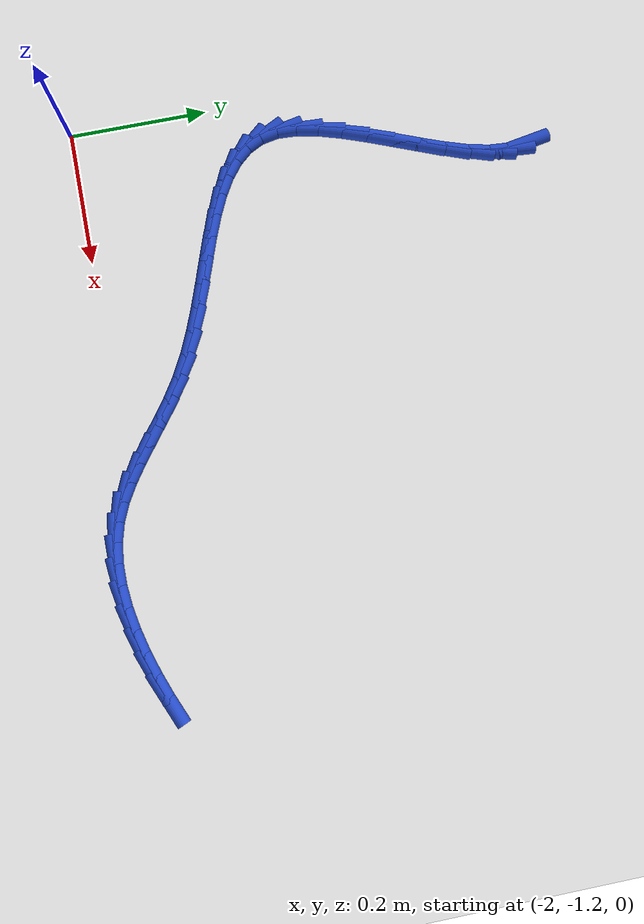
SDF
<sdf version="1.6">
 <world name="default">
  <model name="ground_plane">
   <static>1</static>
   <link name="link">
    <collision name="collision">
     <geometry><plane><normal>0 0 1</normal><size>100 100</size></plane></geometry>
     <surface><friction><ode><mu>100</mu><mu2>50</mu2></ode></friction></surface>
    </collision>
    <visual name="visual">
     <cast_shadows>0</cast_shadows>
     <geometry><plane><normal>0 0 1</normal><size>100 100</size></plane></geometry>
     <material>
      <script><uri>file://media/materials/scripts/gazebo.material</uri><name>Gazebo/WhiteGlow</name></script>
     </material>
    </visual>
   </link>
  </model>
  <model name="line">
   <link name="link_141">
    <pose>-1.854165806229068 -0.5534928655874214 0.01 0 1.57 -1.3973578082599947</pose>
    <collision name="collision">
     <geometry><cylinder><radius>0.01</radius><length>0.08</length></cylinder></geometry>
    </collision>
    <visual name="visual">
     <material>
      <script><name>Gazebo/Blue</name><uri>file://media/materials/scripts/gazebo.material</uri></script>
     </material>
     <geometry><cylinder><radius>0.01</radius><length>0.08</length></cylinder></geometry>
    </visual>
   </link>
   <link name="link_142">
    <pose>-1.8500375443433164 -0.5770561703195455 0.01 0 1.57 1.493305651249507</pose>
    <collision name="collision">
     <geometry><cylinder><radius>0.01</radius><length>0.08</length></cylinder></geometry>
    </collision>
    <visual name="visual">
     <material>
      <script><name>Gazebo/Blue</name><uri>file://media/materials/scripts/gazebo.material</uri></script>
     </material>
     <geometry><cylinder><radius>0.01</radius><length>0.08</length></cylinder></geometry>
    </visual>
   </link>
   <link name="link_143">
    <pose>-1.8521637762535095 -0.6044397790102898 0.01 0 1.57 1.3415116810650143</pose>
    <collision name="collision">
     <geometry><cylinder><radius>0.01</radius><length>0.08</length></cylinder></geometry>
    </collision>
    <visual name="visual">
     <material>
      <script><name>Gazebo/Blue</name><uri>file://media/materials/scripts/gazebo.material</uri></script>
     </material>
     <geometry><cylinder><radius>0.01</radius><length>0.08</length></cylinder></geometry>
    </visual>
   </link>
   <link name="link_144">
    <pose>-1.8592758646518743 -0.6349128987666958 0.01 0 1.57 1.2521915727211108</pose>
    <collision name="collision">
     <geometry><cylinder><radius>0.01</radius><length>0.08</length></cylinder></geometry>
    </collision>
    <visual name="visual">
     <material>
      <script><name>Gazebo/Blue</name><uri>file://media/materials/scripts/gazebo.material</uri></script>
     </material>
     <geometry><cylinder><radius>0.01</radius><length>0.08</length></cylinder></geometry>
    </visual>
   </link>
   <link name="link_145">
    <pose>-1.8701051722306377 -0.6677447366958046 0.01 0 1.57 1.2030125254442</pose>
    <collision name="collision">
     <geometry><cylinder><radius>0.01</radius><length>0.08</length></cylinder></geometry>
    </collision>
    <visual name="visual">
     <material>
      <script><name>Gazebo/Blue</name><uri>file://media/materials/scripts/gazebo.material</uri></script>
     </material>
     <geometry><cylinder><radius>0.01</radius><length>0.08</length></cylinder></geometry>
    </visual>
   </link>
   <link name="link_146">
    <pose>-1.883383061682026 -0.7022044999046577 0.01 0 1.57 1.1826314811759724</pose>
    <collision name="collision">
     <geometry><cylinder><radius>0.01</radius><length>0.08</length></cylinder></geometry>
    </collision>
    <visual name="visual">
     <material>
      <script><name>Gazebo/Blue</name><uri>file://media/materials/scripts/gazebo.material</uri></script>
     </material>
     <geometry><cylinder><radius>0.01</radius><length>0.08</length></cylinder></geometry>
    </visual>
   </link>
   <link name="link_147">
    <pose>-1.8978408956982655 -0.7375613955002972 0.01 0 1.57 1.186416846096629</pose>
    <collision name="collision">
     <geometry><cylinder><radius>0.01</radius><length>0.08</length></cylinder></geometry>
    </collision>
    <visual name="visual">
     <material>
      <script><name>Gazebo/Blue</name><uri>file://media/materials/scripts/gazebo.material</uri></script>
     </material>
     <geometry><cylinder><radius>0.01</radius><length>0.08</length></cylinder></geometry>
    </visual>
   </link>
   <link name="link_148">
    <pose>-1.912210036971583 -0.7730846305897628 0.01 0 1.57 1.2144788719923278</pose>
    <collision name="collision">
     <geometry><cylinder><radius>0.01</radius><length>0.08</length></cylinder></geometry>
    </collision>
    <visual name="visual">
     <material>
      <script><name>Gazebo/Blue</name><uri>file://media/materials/scripts/gazebo.material</uri></script>
     </material>
     <geometry><cylinder><radius>0.01</radius><length>0.08</length></cylinder></geometry>
    </visual>
   </link>
   <link name="link_149">
    <pose>-1.9252218481942047 -0.8080434122800966 0.01 0 1.57 1.27154227891615</pose>
    <collision name="collision">
     <geometry><cylinder><radius>0.01</radius><length>0.08</length></cylinder></geometry>
    </collision>
    <visual name="visual">
     <material>
      <script><name>Gazebo/Blue</name><uri>file://media/materials/scripts/gazebo.material</uri></script>
     </material>
     <geometry><cylinder><radius>0.01</radius><length>0.08</length></cylinder></geometry>
    </visual>
   </link>
   <link name="link_150">
    <pose>-1.9356076920583571 -0.8417069476783401 0.01 0 1.57 1.3684293108260264</pose>
    <collision name="collision">
     <geometry><cylinder><radius>0.01</radius><length>0.08</length></cylinder></geometry>
    </collision>
    <visual name="visual">
     <material>
      <script><name>Gazebo/Blue</name><uri>file://media/materials/scripts/gazebo.material</uri></script>
     </material>
     <geometry><cylinder><radius>0.01</radius><length>0.08</length></cylinder></geometry>
    </visual>
   </link>
   <link name="link_151">
    <pose>-1.9420989312562678 -0.8733444438915345 0.01 0 1.57 1.5248464675302655</pose>
    <collision name="collision">
     <geometry><cylinder><radius>0.01</radius><length>0.08</length></cylinder></geometry>
    </collision>
    <visual name="visual">
     <material>
      <script><name>Gazebo/Blue</name><uri>file://media/materials/scripts/gazebo.material</uri></script>
     </material>
     <geometry><cylinder><radius>0.01</radius><length>0.08</length></cylinder></geometry>
    </visual>
   </link>
   <link name="link_152">
    <pose>-1.943426928480162 -0.9022251080267211 0.01 0 1.57 -1.3774402840594402</pose>
    <collision name="collision">
     <geometry><cylinder><radius>0.01</radius><length>0.08</length></cylinder></geometry>
    </collision>
    <visual name="visual">
     <material>
      <script><name>Gazebo/Blue</name><uri>file://media/materials/scripts/gazebo.material</uri></script>
     </material>
     <geometry><cylinder><radius>0.01</radius><length>0.08</length></cylinder></geometry>
    </visual>
   </link>
   <link name="link_153">
    <pose>-1.9384411885833412 -0.927688244272657 0.01 0 1.57 -1.0998713573117962</pose>
    <collision name="collision">
     <geometry><cylinder><radius>0.01</radius><length>0.08</length></cylinder></geometry>
    </collision>
    <visual name="visual">
     <material>
      <script><name>Gazebo/Blue</name><uri>file://media/materials/scripts/gazebo.material</uri></script>
     </material>
     <geometry><cylinder><radius>0.01</radius><length>0.08</length></cylinder></geometry>
    </visual>
   </link>
   <link name="link_154">
    <pose>-1.927191041580783 -0.949785046981926 0.01 0 1.57 -0.8528666515280379</pose>
    <collision name="collision">
     <geometry><cylinder><radius>0.01</radius><length>0.08</length></cylinder></geometry>
    </collision>
    <visual name="visual">
     <material>
      <script><name>Gazebo/Blue</name><uri>file://media/materials/scripts/gazebo.material</uri></script>
     </material>
     <geometry><cylinder><radius>0.01</radius><length>0.08</length></cylinder></geometry>
    </visual>
   </link>
   <link name="link_155">
    <pose>-1.9104247288167129 -0.968981394343202 0.01 0 1.57 -0.6617617503516048</pose>
    <collision name="collision">
     <geometry><cylinder><radius>0.01</radius><length>0.08</length></cylinder></geometry>
    </collision>
    <visual name="visual">
     <material>
      <script><name>Gazebo/Blue</name><uri>file://media/materials/scripts/gazebo.material</uri></script>
     </material>
     <geometry><cylinder><radius>0.01</radius><length>0.08</length></cylinder></geometry>
    </visual>
   </link>
   <link name="link_156">
    <pose>-1.8888991851877737 -0.9857483226753997 0.01 0 1.57 -0.5256541007302137</pose>
    <collision name="collision">
     <geometry><cylinder><radius>0.01</radius><length>0.08</length></cylinder></geometry>
    </collision>
    <visual name="visual">
     <material>
      <script><name>Gazebo/Blue</name><uri>file://media/materials/scripts/gazebo.material</uri></script>
     </material>
     <geometry><cylinder><radius>0.01</radius><length>0.08</length></cylinder></geometry>
    </visual>
   </link>
   <link name="link_157">
    <pose>-1.8633713455906042 -1.0005568682974357 0.01 0 1.57 -0.433589297115873</pose>
    <collision name="collision">
     <geometry><cylinder><radius>0.01</radius><length>0.08</length></cylinder></geometry>
    </collision>
    <visual name="visual">
     <material>
      <script><name>Gazebo/Blue</name><uri>file://media/materials/scripts/gazebo.material</uri></script>
     </material>
     <geometry><cylinder><radius>0.01</radius><length>0.08</length></cylinder></geometry>
    </visual>
   </link>
   <link name="link_158">
    <pose>-1.834598144921848 -1.0138780675282264 0.01 0 1.57 -0.37498565374262627</pose>
    <collision name="collision">
     <geometry><cylinder><radius>0.01</radius><length>0.08</length></cylinder></geometry>
    </collision>
    <visual name="visual">
     <material>
      <script><name>Gazebo/Blue</name><uri>file://media/materials/scripts/gazebo.material</uri></script>
     </material>
     <geometry><cylinder><radius>0.01</radius><length>0.08</length></cylinder></geometry>
    </visual>
   </link>
   <link name="link_159">
    <pose>-1.8033365180781427 -1.0261829566866865 0.01 0 1.57 -0.3423883080129505</pose>
    <collision name="collision">
     <geometry><cylinder><radius>0.01</radius><length>0.08</length></cylinder></geometry>
    </collision>
    <visual name="visual">
     <material>
      <script><name>Gazebo/Blue</name><uri>file://media/materials/scripts/gazebo.material</uri></script>
     </material>
     <geometry><cylinder><radius>0.01</radius><length>0.08</length></cylinder></geometry>
    </visual>
   </link>
   <link name="link_160">
    <pose>-1.770343399956132 -1.037942572091733 0.01 0 1.57 -0.3313327483532401</pose>
    <collision name="collision">
     <geometry><cylinder><radius>0.01</radius><length>0.08</length></cylinder></geometry>
    </collision>
    <visual name="visual">
     <material>
      <script><name>Gazebo/Blue</name><uri>file://media/materials/scripts/gazebo.material</uri></script>
     </material>
     <geometry><cylinder><radius>0.01</radius><length>0.08</length></cylinder></geometry>
    </visual>
   </link>
   <link name="link_161">
    <pose>-1.7363757254524552 -1.0496279500622816 0.01 0 1.57 -0.33972898498589343</pose>
    <collision name="collision">
     <geometry><cylinder><radius>0.01</radius><length>0.08</length></cylinder></geometry>
    </collision>
    <visual name="visual">
     <material>
      <script><name>Gazebo/Blue</name><uri>file://media/materials/scripts/gazebo.material</uri></script>
     </material>
     <geometry><cylinder><radius>0.01</radius><length>0.08</length></cylinder></geometry>
    </visual>
   </link>
   <link name="link_162">
    <pose>-1.702190429463752 -1.061710126917248 0.01 0 1.57 -0.3674132929218604</pose>
    <collision name="collision">
     <geometry><cylinder><radius>0.01</radius><length>0.08</length></cylinder></geometry>
    </collision>
    <visual name="visual">
     <material>
      <script><name>Gazebo/Blue</name><uri>file://media/materials/scripts/gazebo.material</uri></script>
     </material>
     <geometry><cylinder><radius>0.01</radius><length>0.08</length></cylinder></geometry>
    </visual>
   </link>
   <link name="link_163">
    <pose>-1.6685444468866664 -1.0746601389755481 0.01 0 1.57 -0.4159303983714033</pose>
    <collision name="collision">
     <geometry><cylinder><radius>0.01</radius><length>0.08</length></cylinder></geometry>
    </collision>
    <visual name="visual">
     <material>
      <script><name>Gazebo/Blue</name><uri>file://media/materials/scripts/gazebo.material</uri></script>
     </material>
     <geometry><cylinder><radius>0.01</radius><length>0.08</length></cylinder></geometry>
    </visual>
   </link>
   <link name="link_164">
    <pose>-1.6361947126178373 -1.0889490225560976 0.01 0 1.57 -0.48801695219337327</pose>
    <collision name="collision">
     <geometry><cylinder><radius>0.01</radius><length>0.08</length></cylinder></geometry>
    </collision>
    <visual name="visual">
     <material>
      <script><name>Gazebo/Blue</name><uri>file://media/materials/scripts/gazebo.material</uri></script>
     </material>
     <geometry><cylinder><radius>0.01</radius><length>0.08</length></cylinder></geometry>
    </visual>
   </link>
   <link name="link_165">
    <pose>-1.6058876033263507 -1.1050373576811305 0.01 0 1.57 -0.5667453665484424</pose>
    <collision name="collision">
     <geometry><cylinder><radius>0.01</radius><length>0.08</length></cylinder></geometry>
    </collision>
    <visual name="visual">
     <material>
      <script><name>Gazebo/Blue</name><uri>file://media/materials/scripts/gazebo.material</uri></script>
     </material>
     <geometry><cylinder><radius>0.01</radius><length>0.08</length></cylinder></geometry>
    </visual>
   </link>
   <link name="link_166">
    <pose>-1.5778554471436492 -1.1228766385447426 0.01 0 1.57 -0.6216891383600409</pose>
    <collision name="collision">
     <geometry><cylinder><radius>0.01</radius><length>0.08</length></cylinder></geometry>
    </collision>
    <visual name="visual">
     <material>
      <script><name>Gazebo/Blue</name><uri>file://media/materials/scripts/gazebo.material</uri></script>
     </material>
     <geometry><cylinder><radius>0.01</radius><length>0.08</length></cylinder></geometry>
    </visual>
   </link>
   <link name="link_167">
    <pose>-1.5515958001918952 -1.141690680942112 0.01 0 1.57 -0.6478854155466593</pose>
    <collision name="collision">
     <geometry><cylinder><radius>0.01</radius><length>0.08</length></cylinder></geometry>
    </collision>
    <visual name="visual">
     <material>
      <script><name>Gazebo/Blue</name><uri>file://media/materials/scripts/gazebo.material</uri></script>
     </material>
     <geometry><cylinder><radius>0.01</radius><length>0.08</length></cylinder></geometry>
    </visual>
   </link>
   <link name="link_168">
    <pose>-1.5265497419622174 -1.1606473692721102 0.01 0 1.57 -0.6428100455227205</pose>
    <collision name="collision">
     <geometry><cylinder><radius>0.01</radius><length>0.08</length></cylinder></geometry>
    </collision>
    <visual name="visual">
     <material>
      <script><name>Gazebo/Blue</name><uri>file://media/materials/scripts/gazebo.material</uri></script>
     </material>
     <geometry><cylinder><radius>0.01</radius><length>0.08</length></cylinder></geometry>
    </visual>
   </link>
   <link name="link_169">
    <pose>-1.5021583519457462 -1.1789145879336105 0.01 0 1.57 -0.6034708517356031</pose>
    <collision name="collision">
     <geometry><cylinder><radius>0.01</radius><length>0.08</length></cylinder></geometry>
    </collision>
    <visual name="visual">
     <material>
      <script><name>Gazebo/Blue</name><uri>file://media/materials/scripts/gazebo.material</uri></script>
     </material>
     <geometry><cylinder><radius>0.01</radius><length>0.08</length></cylinder></geometry>
    </visual>
   </link>
   <link name="link_170">
    <pose>-1.477862709633611 -1.1956602213254852 0.01 0 1.57 -0.5265449369383295</pose>
    <collision name="collision">
     <geometry><cylinder><radius>0.01</radius><length>0.08</length></cylinder></geometry>
    </collision>
    <visual name="visual">
     <material>
      <script><name>Gazebo/Blue</name><uri>file://media/materials/scripts/gazebo.material</uri></script>
     </material>
     <geometry><cylinder><radius>0.01</radius><length>0.08</length></cylinder></geometry>
    </visual>
   </link>
   <link name="link_171">
    <pose>-1.4531038945169434 -1.2100521538466067 0.01 0 1.57 -0.41003030078571145</pose>
    <collision name="collision">
     <geometry><cylinder><radius>0.01</radius><length>0.08</length></cylinder></geometry>
    </collision>
    <visual name="visual">
     <material>
      <script><name>Gazebo/Blue</name><uri>file://media/materials/scripts/gazebo.material</uri></script>
     </material>
     <geometry><cylinder><radius>0.01</radius><length>0.08</length></cylinder></geometry>
    </visual>
   </link>
   <link name="link_172">
    <pose>-1.4273229860868717 -1.221258269895847 0.01 0 1.57 -0.26149630970192533</pose>
    <collision name="collision">
     <geometry><cylinder><radius>0.01</radius><length>0.08</length></cylinder></geometry>
    </collision>
    <visual name="visual">
     <material>
      <script><name>Gazebo/Blue</name><uri>file://media/materials/scripts/gazebo.material</uri></script>
     </material>
     <geometry><cylinder><radius>0.01</radius><length>0.08</length></cylinder></geometry>
    </visual>
   </link>
   <link name="link_173">
    <pose>-1.4000421168971438 -1.2285592956169802 0.01 0 1.57 -0.11958687626558703</pose>
    <collision name="collision">
     <geometry><cylinder><radius>0.01</radius><length>0.08</length></cylinder></geometry>
    </collision>
    <visual name="visual">
     <material>
      <script><name>Gazebo/Blue</name><uri>file://media/materials/scripts/gazebo.material</uri></script>
     </material>
     <geometry><cylinder><radius>0.01</radius><length>0.08</length></cylinder></geometry>
    </visual>
   </link>
   <link name="link_174">
    <pose>-1.3713382294219465 -1.2320083612738586 0.01 0 1.57 0.0008811852000933732</pose>
    <collision name="collision">
     <geometry><cylinder><radius>0.01</radius><length>0.08</length></cylinder></geometry>
    </collision>
    <visual name="visual">
     <material>
      <script><name>Gazebo/Blue</name><uri>file://media/materials/scripts/gazebo.material</uri></script>
     </material>
     <geometry><cylinder><radius>0.01</radius><length>0.08</length></cylinder></geometry>
    </visual>
   </link>
   <link name="link_175">
    <pose>-1.341520625170057 -1.231982086435489 0.01 0 1.57 0.10166565940591481</pose>
    <collision name="collision">
     <geometry><cylinder><radius>0.01</radius><length>0.08</length></cylinder></geometry>
    </collision>
    <visual name="visual">
     <material>
      <script><name>Gazebo/Blue</name><uri>file://media/materials/scripts/gazebo.material</uri></script>
     </material>
     <geometry><cylinder><radius>0.01</radius><length>0.08</length></cylinder></geometry>
    </visual>
   </link>
   <link name="link_176">
    <pose>-1.3108993942892784 -1.2288581886109282 0.01 0 1.57 0.18565171513354536</pose>
    <collision name="collision">
     <geometry><cylinder><radius>0.01</radius><length>0.08</length></cylinder></geometry>
    </collision>
    <visual name="visual">
     <material>
      <script><name>Gazebo/Blue</name><uri>file://media/materials/scripts/gazebo.material</uri></script>
     </material>
     <geometry><cylinder><radius>0.01</radius><length>0.08</length></cylinder></geometry>
    </visual>
   </link>
   <link name="link_177">
    <pose>-1.2797846269274114 -1.2230143853092337 0.01 0 1.57 0.25581767402455174</pose>
    <collision name="collision">
     <geometry><cylinder><radius>0.01</radius><length>0.08</length></cylinder></geometry>
    </collision>
    <visual name="visual">
     <material>
      <script><name>Gazebo/Blue</name><uri>file://media/materials/scripts/gazebo.material</uri></script>
     </material>
     <geometry><cylinder><radius>0.01</radius><length>0.08</length></cylinder></geometry>
    </visual>
   </link>
   <link name="link_178">
    <pose>-1.2484864132322602 -1.2148283940394629 0.01 0 1.57 0.31480344671542326</pose>
    <collision name="collision">
     <geometry><cylinder><radius>0.01</radius><length>0.08</length></cylinder></geometry>
    </collision>
    <visual name="visual">
     <material>
      <script><name>Gazebo/Blue</name><uri>file://media/materials/scripts/gazebo.material</uri></script>
     </material>
     <geometry><cylinder><radius>0.01</radius><length>0.08</length></cylinder></geometry>
    </visual>
   </link>
   <link name="link_179">
    <pose>-1.2173148433516277 -1.204677932310674 0.01 0 1.57 0.3647943182121038</pose>
    <collision name="collision">
     <geometry><cylinder><radius>0.01</radius><length>0.08</length></cylinder></geometry>
    </collision>
    <visual name="visual">
     <material>
      <script><name>Gazebo/Blue</name><uri>file://media/materials/scripts/gazebo.material</uri></script>
     </material>
     <geometry><cylinder><radius>0.01</radius><length>0.08</length></cylinder></geometry>
    </visual>
   </link>
   <link name="link_180">
    <pose>-1.186580007433316 -1.1929407176319242 0.01 0 1.57 0.40754287187056165</pose>
    <collision name="collision">
     <geometry><cylinder><radius>0.01</radius><length>0.08</length></cylinder></geometry>
    </collision>
    <visual name="visual">
     <material>
      <script><name>Gazebo/Blue</name><uri>file://media/materials/scripts/gazebo.material</uri></script>
     </material>
     <geometry><cylinder><radius>0.01</radius><length>0.08</length></cylinder></geometry>
    </visual>
   </link>
  </model>
 </world>
</sdf>
